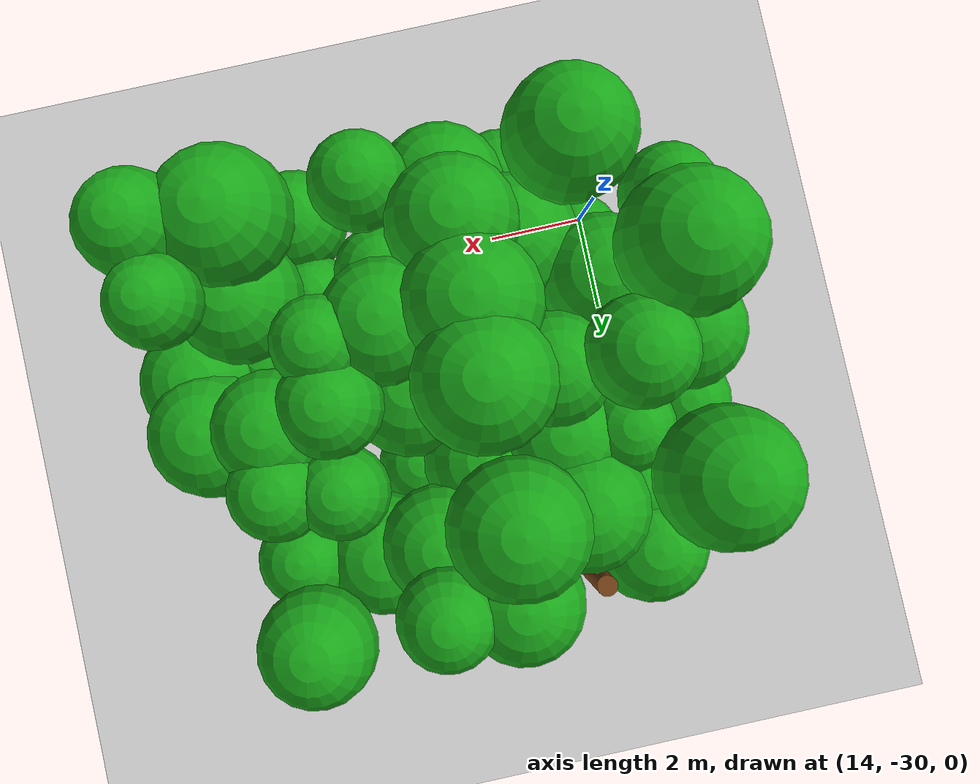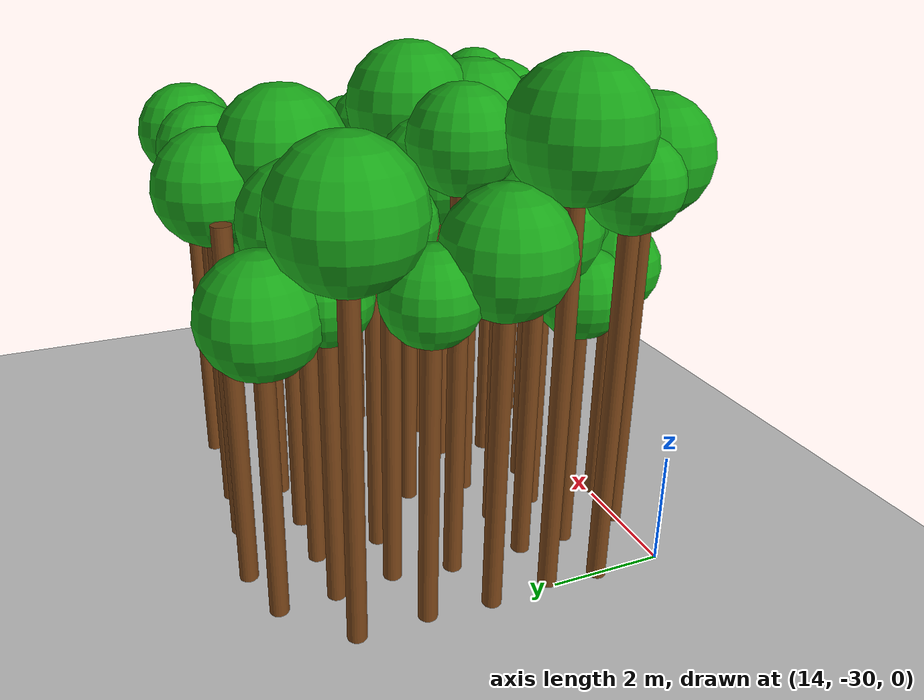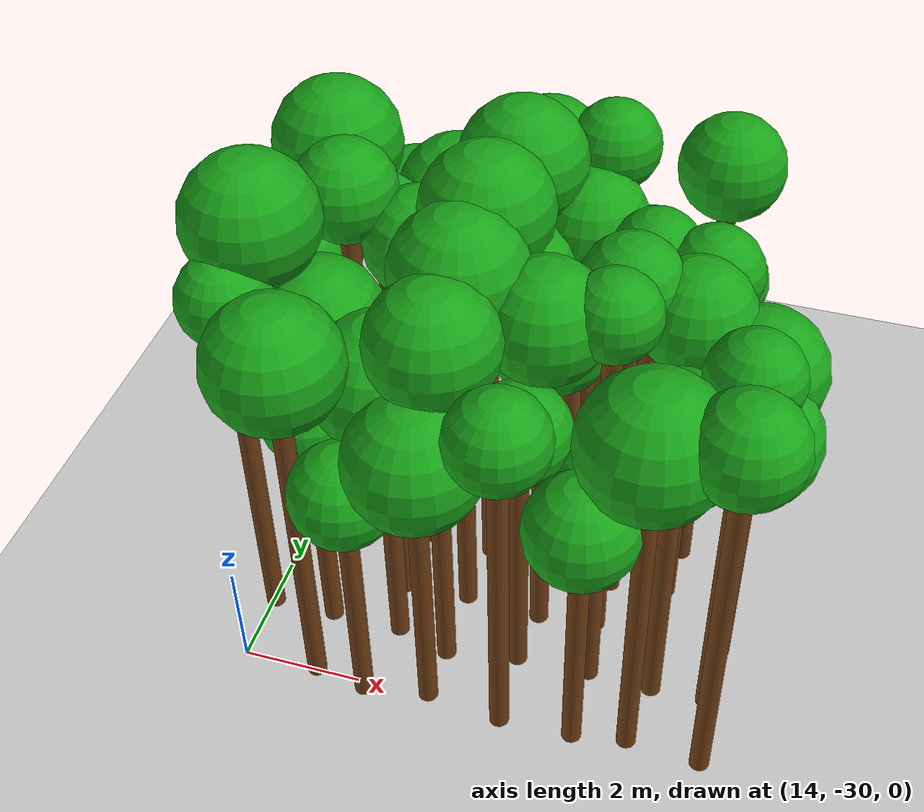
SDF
<sdf version="1.6">
 <world name="forest_world">
  <include><uri>model://sun</uri></include>
  <include><uri>model://ground_plane</uri></include>
  <model name="tree_2178_trunk">
   <static>true</static>
   <pose>14.03 -28.81 3.19 0 0 0</pose>
   <link name="link">
    <collision name="collision">
     <geometry><cylinder><radius>0.16</radius><length>6.37</length></cylinder></geometry>
    </collision>
    <visual name="visual">
     <geometry><cylinder><radius>0.16</radius><length>6.37</length></cylinder></geometry>
     <material><ambient>0.35 0.20 0.05 1</ambient><diffuse>0.45 0.25 0.08 1</diffuse></material>
    </visual>
   </link>
  </model>
  <model name="tree_2178_leaf">
   <static>true</static>
   <pose>14.03 -28.81 6.82 0 0 0</pose>
   <link name="link">
    <collision name="collision"><geometry><sphere><radius>0.74</radius></sphere></geometry></collision>
    <visual name="visual">
     <geometry><sphere><radius>0.74</radius></sphere></geometry>
     <material><ambient>0.05 0.45 0.05 1</ambient><diffuse>0.10 0.65 0.10 1</diffuse></material>
    </visual>
   </link>
  </model>
  <model name="tree_2179_trunk">
   <static>true</static>
   <pose>14.14 -27.92 3.50 0 0 0</pose>
   <link name="link">
    <collision name="collision">
     <geometry><cylinder><radius>0.16</radius><length>7.00</length></cylinder></geometry>
    </collision>
    <visual name="visual">
     <geometry><cylinder><radius>0.16</radius><length>7.00</length></cylinder></geometry>
     <material><ambient>0.35 0.20 0.05 1</ambient><diffuse>0.45 0.25 0.08 1</diffuse></material>
    </visual>
   </link>
  </model>
  <model name="tree_2179_leaf">
   <static>true</static>
   <pose>14.14 -27.92 7.63 0 0 0</pose>
   <link name="link">
    <collision name="collision"><geometry><sphere><radius>1.06</radius></sphere></geometry></collision>
    <visual name="visual">
     <geometry><sphere><radius>1.06</radius></sphere></geometry>
     <material><ambient>0.05 0.45 0.05 1</ambient><diffuse>0.10 0.65 0.10 1</diffuse></material>
    </visual>
   </link>
  </model>
  <model name="tree_2180_trunk">
   <static>true</static>
   <pose>14.05 -26.84 2.72 0 0 0</pose>
   <link name="link">
    <collision name="collision">
     <geometry><cylinder><radius>0.16</radius><length>5.44</length></cylinder></geometry>
    </collision>
    <visual name="visual">
     <geometry><cylinder><radius>0.16</radius><length>5.44</length></cylinder></geometry>
     <material><ambient>0.35 0.20 0.05 1</ambient><diffuse>0.45 0.25 0.08 1</diffuse></material>
    </visual>
   </link>
  </model>
  <model name="tree_2180_leaf">
   <static>true</static>
   <pose>14.05 -26.84 6.03 0 0 0</pose>
   <link name="link">
    <collision name="collision"><geometry><sphere><radius>0.99</radius></sphere></geometry></collision>
    <visual name="visual">
     <geometry><sphere><radius>0.99</radius></sphere></geometry>
     <material><ambient>0.05 0.45 0.05 1</ambient><diffuse>0.10 0.65 0.10 1</diffuse></material>
    </visual>
   </link>
  </model>
  <model name="tree_2181_trunk">
   <static>true</static>
   <pose>14.14 -25.75 2.53 0 0 0</pose>
   <link name="link">
    <collision name="collision">
     <geometry><cylinder><radius>0.16</radius><length>5.06</length></cylinder></geometry>
    </collision>
    <visual name="visual">
     <geometry><cylinder><radius>0.16</radius><length>5.06</length></cylinder></geometry>
     <material><ambient>0.35 0.20 0.05 1</ambient><diffuse>0.45 0.25 0.08 1</diffuse></material>
    </visual>
   </link>
  </model>
  <model name="tree_2181_leaf">
   <static>true</static>
   <pose>14.14 -25.75 5.51 0 0 0</pose>
   <link name="link">
    <collision name="collision"><geometry><sphere><radius>0.75</radius></sphere></geometry></collision>
    <visual name="visual">
     <geometry><sphere><radius>0.75</radius></sphere></geometry>
     <material><ambient>0.05 0.45 0.05 1</ambient><diffuse>0.10 0.65 0.10 1</diffuse></material>
    </visual>
   </link>
  </model>
  <model name="tree_2182_trunk">
   <static>true</static>
   <pose>14.12 -24.56 3.08 0 0 0</pose>
   <link name="link">
    <collision name="collision">
     <geometry><cylinder><radius>0.16</radius><length>6.16</length></cylinder></geometry>
    </collision>
    <visual name="visual">
     <geometry><cylinder><radius>0.16</radius><length>6.16</length></cylinder></geometry>
     <material><ambient>0.35 0.20 0.05 1</ambient><diffuse>0.45 0.25 0.08 1</diffuse></material>
    </visual>
   </link>
  </model>
  <model name="tree_2182_leaf">
   <static>true</static>
   <pose>14.12 -24.56 6.81 0 0 0</pose>
   <link name="link">
    <collision name="collision"><geometry><sphere><radius>1.09</radius></sphere></geometry></collision>
    <visual name="visual">
     <geometry><sphere><radius>1.09</radius></sphere></geometry>
     <material><ambient>0.05 0.45 0.05 1</ambient><diffuse>0.10 0.65 0.10 1</diffuse></material>
    </visual>
   </link>
  </model>
  <model name="tree_2232_trunk">
   <static>true</static>
   <pose>15.26 -29.96 3.13 0 0 0</pose>
   <link name="link">
    <collision name="collision">
     <geometry><cylinder><radius>0.16</radius><length>6.26</length></cylinder></geometry>
    </collision>
    <visual name="visual">
     <geometry><cylinder><radius>0.16</radius><length>6.26</length></cylinder></geometry>
     <material><ambient>0.35 0.20 0.05 1</ambient><diffuse>0.45 0.25 0.08 1</diffuse></material>
    </visual>
   </link>
  </model>
  <model name="tree_2232_leaf">
   <static>true</static>
   <pose>15.26 -29.96 6.88 0 0 0</pose>
   <link name="link">
    <collision name="collision"><geometry><sphere><radius>1.03</radius></sphere></geometry></collision>
    <visual name="visual">
     <geometry><sphere><radius>1.03</radius></sphere></geometry>
     <material><ambient>0.05 0.45 0.05 1</ambient><diffuse>0.10 0.65 0.10 1</diffuse></material>
    </visual>
   </link>
  </model>
  <model name="tree_2233_trunk">
   <static>true</static>
   <pose>15.11 -28.79 2.15 0 0 0</pose>
   <link name="link">
    <collision name="collision">
     <geometry><cylinder><radius>0.16</radius><length>4.30</length></cylinder></geometry>
    </collision>
    <visual name="visual">
     <geometry><cylinder><radius>0.16</radius><length>4.30</length></cylinder></geometry>
     <material><ambient>0.35 0.20 0.05 1</ambient><diffuse>0.45 0.25 0.08 1</diffuse></material>
    </visual>
   </link>
  </model>
  <model name="tree_2233_leaf">
   <static>true</static>
   <pose>15.11 -28.79 4.76 0 0 0</pose>
   <link name="link">
    <collision name="collision"><geometry><sphere><radius>0.77</radius></sphere></geometry></collision>
    <visual name="visual">
     <geometry><sphere><radius>0.77</radius></sphere></geometry>
     <material><ambient>0.05 0.45 0.05 1</ambient><diffuse>0.10 0.65 0.10 1</diffuse></material>
    </visual>
   </link>
  </model>
  <model name="tree_2234_trunk">
   <static>true</static>
   <pose>15.09 -27.92 2.69 0 0 0</pose>
   <link name="link">
    <collision name="collision">
     <geometry><cylinder><radius>0.16</radius><length>5.38</length></cylinder></geometry>
    </collision>
    <visual name="visual">
     <geometry><cylinder><radius>0.16</radius><length>5.38</length></cylinder></geometry>
     <material><ambient>0.35 0.20 0.05 1</ambient><diffuse>0.45 0.25 0.08 1</diffuse></material>
    </visual>
   </link>
  </model>
  <model name="tree_2234_leaf">
   <static>true</static>
   <pose>15.09 -27.92 5.98 0 0 0</pose>
   <link name="link">
    <collision name="collision"><geometry><sphere><radius>1.00</radius></sphere></geometry></collision>
    <visual name="visual">
     <geometry><sphere><radius>1.00</radius></sphere></geometry>
     <material><ambient>0.05 0.45 0.05 1</ambient><diffuse>0.10 0.65 0.10 1</diffuse></material>
    </visual>
   </link>
  </model>
  <model name="tree_2235_trunk">
   <static>true</static>
   <pose>15.08 -26.60 3.46 0 0 0</pose>
   <link name="link">
    <collision name="collision">
     <geometry><cylinder><radius>0.16</radius><length>6.93</length></cylinder></geometry>
    </collision>
    <visual name="visual">
     <geometry><cylinder><radius>0.16</radius><length>6.93</length></cylinder></geometry>
     <material><ambient>0.35 0.20 0.05 1</ambient><diffuse>0.45 0.25 0.08 1</diffuse></material>
    </visual>
   </link>
  </model>
  <model name="tree_2235_leaf">
   <static>true</static>
   <pose>15.08 -26.60 7.42 0 0 0</pose>
   <link name="link">
    <collision name="collision"><geometry><sphere><radius>0.82</radius></sphere></geometry></collision>
    <visual name="visual">
     <geometry><sphere><radius>0.82</radius></sphere></geometry>
     <material><ambient>0.05 0.45 0.05 1</ambient><diffuse>0.10 0.65 0.10 1</diffuse></material>
    </visual>
   </link>
  </model>
  <model name="tree_2236_trunk">
   <static>true</static>
   <pose>15.24 -25.56 2.90 0 0 0</pose>
   <link name="link">
    <collision name="collision">
     <geometry><cylinder><radius>0.16</radius><length>5.80</length></cylinder></geometry>
    </collision>
    <visual name="visual">
     <geometry><cylinder><radius>0.16</radius><length>5.80</length></cylinder></geometry>
     <material><ambient>0.35 0.20 0.05 1</ambient><diffuse>0.45 0.25 0.08 1</diffuse></material>
    </visual>
   </link>
  </model>
  <model name="tree_2236_leaf">
   <static>true</static>
   <pose>15.24 -25.56 6.23 0 0 0</pose>
   <link name="link">
    <collision name="collision"><geometry><sphere><radius>0.72</radius></sphere></geometry></collision>
    <visual name="visual">
     <geometry><sphere><radius>0.72</radius></sphere></geometry>
     <material><ambient>0.05 0.45 0.05 1</ambient><diffuse>0.10 0.65 0.10 1</diffuse></material>
    </visual>
   </link>
  </model>
  <model name="tree_2237_trunk">
   <static>true</static>
   <pose>15.13 -24.54 2.42 0 0 0</pose>
   <link name="link">
    <collision name="collision">
     <geometry><cylinder><radius>0.16</radius><length>4.84</length></cylinder></geometry>
    </collision>
    <visual name="visual">
     <geometry><cylinder><radius>0.16</radius><length>4.84</length></cylinder></geometry>
     <material><ambient>0.35 0.20 0.05 1</ambient><diffuse>0.45 0.25 0.08 1</diffuse></material>
    </visual>
   </link>
  </model>
  <model name="tree_2237_leaf">
   <static>true</static>
   <pose>15.13 -24.54 5.27 0 0 0</pose>
   <link name="link">
    <collision name="collision"><geometry><sphere><radius>0.71</radius></sphere></geometry></collision>
    <visual name="visual">
     <geometry><sphere><radius>0.71</radius></sphere></geometry>
     <material><ambient>0.05 0.45 0.05 1</ambient><diffuse>0.10 0.65 0.10 1</diffuse></material>
    </visual>
   </link>
  </model>
  <model name="tree_2238_trunk">
   <static>true</static>
   <pose>15.11 -23.57 2.30 0 0 0</pose>
   <link name="link">
    <collision name="collision">
     <geometry><cylinder><radius>0.16</radius><length>4.60</length></cylinder></geometry>
    </collision>
    <visual name="visual">
     <geometry><cylinder><radius>0.16</radius><length>4.60</length></cylinder></geometry>
     <material><ambient>0.35 0.20 0.05 1</ambient><diffuse>0.45 0.25 0.08 1</diffuse></material>
    </visual>
   </link>
  </model>
  <model name="tree_2238_leaf">
   <static>true</static>
   <pose>15.11 -23.57 5.17 0 0 0</pose>
   <link name="link">
    <collision name="collision"><geometry><sphere><radius>0.95</radius></sphere></geometry></collision>
    <visual name="visual">
     <geometry><sphere><radius>0.95</radius></sphere></geometry>
     <material><ambient>0.05 0.45 0.05 1</ambient><diffuse>0.10 0.65 0.10 1</diffuse></material>
    </visual>
   </link>
  </model>
  <model name="tree_2287_trunk">
   <static>true</static>
   <pose>16.15 -30.10 2.10 0 0 0</pose>
   <link name="link">
    <collision name="collision">
     <geometry><cylinder><radius>0.16</radius><length>4.20</length></cylinder></geometry>
    </collision>
    <visual name="visual">
     <geometry><cylinder><radius>0.16</radius><length>4.20</length></cylinder></geometry>
     <material><ambient>0.35 0.20 0.05 1</ambient><diffuse>0.45 0.25 0.08 1</diffuse></material>
    </visual>
   </link>
  </model>
  <model name="tree_2287_leaf">
   <static>true</static>
   <pose>16.15 -30.10 4.70 0 0 0</pose>
   <link name="link">
    <collision name="collision"><geometry><sphere><radius>0.83</radius></sphere></geometry></collision>
    <visual name="visual">
     <geometry><sphere><radius>0.83</radius></sphere></geometry>
     <material><ambient>0.05 0.45 0.05 1</ambient><diffuse>0.10 0.65 0.10 1</diffuse></material>
    </visual>
   </link>
  </model>
  <model name="tree_2288_trunk">
   <static>true</static>
   <pose>16.32 -28.79 2.58 0 0 0</pose>
   <link name="link">
    <collision name="collision">
     <geometry><cylinder><radius>0.16</radius><length>5.15</length></cylinder></geometry>
    </collision>
    <visual name="visual">
     <geometry><cylinder><radius>0.16</radius><length>5.15</length></cylinder></geometry>
     <material><ambient>0.35 0.20 0.05 1</ambient><diffuse>0.45 0.25 0.08 1</diffuse></material>
    </visual>
   </link>
  </model>
  <model name="tree_2288_leaf">
   <static>true</static>
   <pose>16.32 -28.79 5.80 0 0 0</pose>
   <link name="link">
    <collision name="collision"><geometry><sphere><radius>1.09</radius></sphere></geometry></collision>
    <visual name="visual">
     <geometry><sphere><radius>1.09</radius></sphere></geometry>
     <material><ambient>0.05 0.45 0.05 1</ambient><diffuse>0.10 0.65 0.10 1</diffuse></material>
    </visual>
   </link>
  </model>
  <model name="tree_2289_trunk">
   <static>true</static>
   <pose>16.12 -27.86 2.31 0 0 0</pose>
   <link name="link">
    <collision name="collision">
     <geometry><cylinder><radius>0.16</radius><length>4.62</length></cylinder></geometry>
    </collision>
    <visual name="visual">
     <geometry><cylinder><radius>0.16</radius><length>4.62</length></cylinder></geometry>
     <material><ambient>0.35 0.20 0.05 1</ambient><diffuse>0.45 0.25 0.08 1</diffuse></material>
    </visual>
   </link>
  </model>
  <model name="tree_2289_leaf">
   <static>true</static>
   <pose>16.12 -27.86 5.16 0 0 0</pose>
   <link name="link">
    <collision name="collision"><geometry><sphere><radius>0.90</radius></sphere></geometry></collision>
    <visual name="visual">
     <geometry><sphere><radius>0.90</radius></sphere></geometry>
     <material><ambient>0.05 0.45 0.05 1</ambient><diffuse>0.10 0.65 0.10 1</diffuse></material>
    </visual>
   </link>
  </model>
  <model name="tree_2290_trunk">
   <static>true</static>
   <pose>16.22 -26.63 3.10 0 0 0</pose>
   <link name="link">
    <collision name="collision">
     <geometry><cylinder><radius>0.16</radius><length>6.20</length></cylinder></geometry>
    </collision>
    <visual name="visual">
     <geometry><cylinder><radius>0.16</radius><length>6.20</length></cylinder></geometry>
     <material><ambient>0.35 0.20 0.05 1</ambient><diffuse>0.45 0.25 0.08 1</diffuse></material>
    </visual>
   </link>
  </model>
  <model name="tree_2290_leaf">
   <static>true</static>
   <pose>16.22 -26.63 6.73 0 0 0</pose>
   <link name="link">
    <collision name="collision"><geometry><sphere><radius>0.88</radius></sphere></geometry></collision>
    <visual name="visual">
     <geometry><sphere><radius>0.88</radius></sphere></geometry>
     <material><ambient>0.05 0.45 0.05 1</ambient><diffuse>0.10 0.65 0.10 1</diffuse></material>
    </visual>
   </link>
  </model>
  <model name="tree_2291_trunk">
   <static>true</static>
   <pose>16.22 -25.64 2.71 0 0 0</pose>
   <link name="link">
    <collision name="collision">
     <geometry><cylinder><radius>0.16</radius><length>5.41</length></cylinder></geometry>
    </collision>
    <visual name="visual">
     <geometry><cylinder><radius>0.16</radius><length>5.41</length></cylinder></geometry>
     <material><ambient>0.35 0.20 0.05 1</ambient><diffuse>0.45 0.25 0.08 1</diffuse></material>
    </visual>
   </link>
  </model>
  <model name="tree_2291_leaf">
   <static>true</static>
   <pose>16.22 -25.64 6.00 0 0 0</pose>
   <link name="link">
    <collision name="collision"><geometry><sphere><radius>0.98</radius></sphere></geometry></collision>
    <visual name="visual">
     <geometry><sphere><radius>0.98</radius></sphere></geometry>
     <material><ambient>0.05 0.45 0.05 1</ambient><diffuse>0.10 0.65 0.10 1</diffuse></material>
    </visual>
   </link>
  </model>
  <model name="tree_2292_trunk">
   <static>true</static>
   <pose>16.16 -24.50 2.76 0 0 0</pose>
   <link name="link">
    <collision name="collision">
     <geometry><cylinder><radius>0.16</radius><length>5.51</length></cylinder></geometry>
    </collision>
    <visual name="visual">
     <geometry><cylinder><radius>0.16</radius><length>5.51</length></cylinder></geometry>
     <material><ambient>0.35 0.20 0.05 1</ambient><diffuse>0.45 0.25 0.08 1</diffuse></material>
    </visual>
   </link>
  </model>
  <model name="tree_2292_leaf">
   <static>true</static>
   <pose>16.16 -24.50 6.13 0 0 0</pose>
   <link name="link">
    <collision name="collision"><geometry><sphere><radius>1.02</radius></sphere></geometry></collision>
    <visual name="visual">
     <geometry><sphere><radius>1.02</radius></sphere></geometry>
     <material><ambient>0.05 0.45 0.05 1</ambient><diffuse>0.10 0.65 0.10 1</diffuse></material>
    </visual>
   </link>
  </model>
  <model name="tree_2293_trunk">
   <static>true</static>
   <pose>16.09 -23.28 3.12 0 0 0</pose>
   <link name="link">
    <collision name="collision">
     <geometry><cylinder><radius>0.16</radius><length>6.24</length></cylinder></geometry>
    </collision>
    <visual name="visual">
     <geometry><cylinder><radius>0.16</radius><length>6.24</length></cylinder></geometry>
     <material><ambient>0.35 0.20 0.05 1</ambient><diffuse>0.45 0.25 0.08 1</diffuse></material>
    </visual>
   </link>
  </model>
  <model name="tree_2342_trunk">
   <static>true</static>
   <pose>17.21 -29.93 2.44 0 0 0</pose>
   <link name="link">
    <collision name="collision">
     <geometry><cylinder><radius>0.16</radius><length>4.87</length></cylinder></geometry>
    </collision>
    <visual name="visual">
     <geometry><cylinder><radius>0.16</radius><length>4.87</length></cylinder></geometry>
     <material><ambient>0.35 0.20 0.05 1</ambient><diffuse>0.45 0.25 0.08 1</diffuse></material>
    </visual>
   </link>
  </model>
  <model name="tree_2342_leaf">
   <static>true</static>
   <pose>17.21 -29.93 5.51 0 0 0</pose>
   <link name="link">
    <collision name="collision"><geometry><sphere><radius>1.06</radius></sphere></geometry></collision>
    <visual name="visual">
     <geometry><sphere><radius>1.06</radius></sphere></geometry>
     <material><ambient>0.05 0.45 0.05 1</ambient><diffuse>0.10 0.65 0.10 1</diffuse></material>
    </visual>
   </link>
  </model>
  <model name="tree_2343_trunk">
   <static>true</static>
   <pose>17.24 -29.04 3.18 0 0 0</pose>
   <link name="link">
    <collision name="collision">
     <geometry><cylinder><radius>0.16</radius><length>6.35</length></cylinder></geometry>
    </collision>
    <visual name="visual">
     <geometry><cylinder><radius>0.16</radius><length>6.35</length></cylinder></geometry>
     <material><ambient>0.35 0.20 0.05 1</ambient><diffuse>0.45 0.25 0.08 1</diffuse></material>
    </visual>
   </link>
  </model>
  <model name="tree_2343_leaf">
   <static>true</static>
   <pose>17.24 -29.04 6.95 0 0 0</pose>
   <link name="link">
    <collision name="collision"><geometry><sphere><radius>1.00</radius></sphere></geometry></collision>
    <visual name="visual">
     <geometry><sphere><radius>1.00</radius></sphere></geometry>
     <material><ambient>0.05 0.45 0.05 1</ambient><diffuse>0.10 0.65 0.10 1</diffuse></material>
    </visual>
   </link>
  </model>
  <model name="tree_2344_trunk">
   <static>true</static>
   <pose>17.23 -27.79 3.29 0 0 0</pose>
   <link name="link">
    <collision name="collision">
     <geometry><cylinder><radius>0.16</radius><length>6.59</length></cylinder></geometry>
    </collision>
    <visual name="visual">
     <geometry><cylinder><radius>0.16</radius><length>6.59</length></cylinder></geometry>
     <material><ambient>0.35 0.20 0.05 1</ambient><diffuse>0.45 0.25 0.08 1</diffuse></material>
    </visual>
   </link>
  </model>
  <model name="tree_2344_leaf">
   <static>true</static>
   <pose>17.23 -27.79 7.23 0 0 0</pose>
   <link name="link">
    <collision name="collision"><geometry><sphere><radius>1.06</radius></sphere></geometry></collision>
    <visual name="visual">
     <geometry><sphere><radius>1.06</radius></sphere></geometry>
     <material><ambient>0.05 0.45 0.05 1</ambient><diffuse>0.10 0.65 0.10 1</diffuse></material>
    </visual>
   </link>
  </model>
  <model name="tree_2345_trunk">
   <static>true</static>
   <pose>17.31 -26.66 3.47 0 0 0</pose>
   <link name="link">
    <collision name="collision">
     <geometry><cylinder><radius>0.16</radius><length>6.94</length></cylinder></geometry>
    </collision>
    <visual name="visual">
     <geometry><cylinder><radius>0.16</radius><length>6.94</length></cylinder></geometry>
     <material><ambient>0.35 0.20 0.05 1</ambient><diffuse>0.45 0.25 0.08 1</diffuse></material>
    </visual>
   </link>
  </model>
  <model name="tree_2345_leaf">
   <static>true</static>
   <pose>17.31 -26.66 7.57 0 0 0</pose>
   <link name="link">
    <collision name="collision"><geometry><sphere><radius>1.04</radius></sphere></geometry></collision>
    <visual name="visual">
     <geometry><sphere><radius>1.04</radius></sphere></geometry>
     <material><ambient>0.05 0.45 0.05 1</ambient><diffuse>0.10 0.65 0.10 1</diffuse></material>
    </visual>
   </link>
  </model>
  <model name="tree_2346_trunk">
   <static>true</static>
   <pose>17.46 -25.51 2.47 0 0 0</pose>
   <link name="link">
    <collision name="collision">
     <geometry><cylinder><radius>0.16</radius><length>4.95</length></cylinder></geometry>
    </collision>
    <visual name="visual">
     <geometry><cylinder><radius>0.16</radius><length>4.95</length></cylinder></geometry>
     <material><ambient>0.35 0.20 0.05 1</ambient><diffuse>0.45 0.25 0.08 1</diffuse></material>
    </visual>
   </link>
  </model>
  <model name="tree_2346_leaf">
   <static>true</static>
   <pose>17.46 -25.51 5.53 0 0 0</pose>
   <link name="link">
    <collision name="collision"><geometry><sphere><radius>0.98</radius></sphere></geometry></collision>
    <visual name="visual">
     <geometry><sphere><radius>0.98</radius></sphere></geometry>
     <material><ambient>0.05 0.45 0.05 1</ambient><diffuse>0.10 0.65 0.10 1</diffuse></material>
    </visual>
   </link>
  </model>
  <model name="tree_2347_trunk">
   <static>true</static>
   <pose>17.25 -24.50 3.17 0 0 0</pose>
   <link name="link">
    <collision name="collision">
     <geometry><cylinder><radius>0.16</radius><length>6.34</length></cylinder></geometry>
    </collision>
    <visual name="visual">
     <geometry><cylinder><radius>0.16</radius><length>6.34</length></cylinder></geometry>
     <material><ambient>0.35 0.20 0.05 1</ambient><diffuse>0.45 0.25 0.08 1</diffuse></material>
    </visual>
   </link>
  </model>
  <model name="tree_2347_leaf">
   <static>true</static>
   <pose>17.25 -24.50 6.98 0 0 0</pose>
   <link name="link">
    <collision name="collision"><geometry><sphere><radius>1.07</radius></sphere></geometry></collision>
    <visual name="visual">
     <geometry><sphere><radius>1.07</radius></sphere></geometry>
     <material><ambient>0.05 0.45 0.05 1</ambient><diffuse>0.10 0.65 0.10 1</diffuse></material>
    </visual>
   </link>
  </model>
  <model name="tree_2348_trunk">
   <static>true</static>
   <pose>17.40 -23.39 2.94 0 0 0</pose>
   <link name="link">
    <collision name="collision">
     <geometry><cylinder><radius>0.16</radius><length>5.89</length></cylinder></geometry>
    </collision>
    <visual name="visual">
     <geometry><cylinder><radius>0.16</radius><length>5.89</length></cylinder></geometry>
     <material><ambient>0.35 0.20 0.05 1</ambient><diffuse>0.45 0.25 0.08 1</diffuse></material>
    </visual>
   </link>
  </model>
  <model name="tree_2348_leaf">
   <static>true</static>
   <pose>17.40 -23.39 6.46 0 0 0</pose>
   <link name="link">
    <collision name="collision"><geometry><sphere><radius>0.95</radius></sphere></geometry></collision>
    <visual name="visual">
     <geometry><sphere><radius>0.95</radius></sphere></geometry>
     <material><ambient>0.05 0.45 0.05 1</ambient><diffuse>0.10 0.65 0.10 1</diffuse></material>
    </visual>
   </link>
  </model>
  <model name="tree_2397_trunk">
   <static>true</static>
   <pose>18.47 -30.07 2.97 0 0 0</pose>
   <link name="link">
    <collision name="collision">
     <geometry><cylinder><radius>0.16</radius><length>5.94</length></cylinder></geometry>
    </collision>
    <visual name="visual">
     <geometry><cylinder><radius>0.16</radius><length>5.94</length></cylinder></geometry>
     <material><ambient>0.35 0.20 0.05 1</ambient><diffuse>0.45 0.25 0.08 1</diffuse></material>
    </visual>
   </link>
  </model>
  <model name="tree_2397_leaf">
   <static>true</static>
   <pose>18.47 -30.07 6.41 0 0 0</pose>
   <link name="link">
    <collision name="collision"><geometry><sphere><radius>0.78</radius></sphere></geometry></collision>
    <visual name="visual">
     <geometry><sphere><radius>0.78</radius></sphere></geometry>
     <material><ambient>0.05 0.45 0.05 1</ambient><diffuse>0.10 0.65 0.10 1</diffuse></material>
    </visual>
   </link>
  </model>
  <model name="tree_2398_trunk">
   <static>true</static>
   <pose>18.42 -28.81 2.43 0 0 0</pose>
   <link name="link">
    <collision name="collision">
     <geometry><cylinder><radius>0.16</radius><length>4.87</length></cylinder></geometry>
    </collision>
    <visual name="visual">
     <geometry><cylinder><radius>0.16</radius><length>4.87</length></cylinder></geometry>
     <material><ambient>0.35 0.20 0.05 1</ambient><diffuse>0.45 0.25 0.08 1</diffuse></material>
    </visual>
   </link>
  </model>
  <model name="tree_2398_leaf">
   <static>true</static>
   <pose>18.42 -28.81 5.35 0 0 0</pose>
   <link name="link">
    <collision name="collision"><geometry><sphere><radius>0.81</radius></sphere></geometry></collision>
    <visual name="visual">
     <geometry><sphere><radius>0.81</radius></sphere></geometry>
     <material><ambient>0.05 0.45 0.05 1</ambient><diffuse>0.10 0.65 0.10 1</diffuse></material>
    </visual>
   </link>
  </model>
  <model name="tree_2399_trunk">
   <static>true</static>
   <pose>18.53 -27.86 3.07 0 0 0</pose>
   <link name="link">
    <collision name="collision">
     <geometry><cylinder><radius>0.16</radius><length>6.14</length></cylinder></geometry>
    </collision>
    <visual name="visual">
     <geometry><cylinder><radius>0.16</radius><length>6.14</length></cylinder></geometry>
     <material><ambient>0.35 0.20 0.05 1</ambient><diffuse>0.45 0.25 0.08 1</diffuse></material>
    </visual>
   </link>
  </model>
  <model name="tree_2399_leaf">
   <static>true</static>
   <pose>18.53 -27.86 6.72 0 0 0</pose>
   <link name="link">
    <collision name="collision"><geometry><sphere><radius>0.97</radius></sphere></geometry></collision>
    <visual name="visual">
     <geometry><sphere><radius>0.97</radius></sphere></geometry>
     <material><ambient>0.05 0.45 0.05 1</ambient><diffuse>0.10 0.65 0.10 1</diffuse></material>
    </visual>
   </link>
  </model>
  <model name="tree_2400_trunk">
   <static>true</static>
   <pose>18.34 -26.85 2.54 0 0 0</pose>
   <link name="link">
    <collision name="collision">
     <geometry><cylinder><radius>0.16</radius><length>5.08</length></cylinder></geometry>
    </collision>
    <visual name="visual">
     <geometry><cylinder><radius>0.16</radius><length>5.08</length></cylinder></geometry>
     <material><ambient>0.35 0.20 0.05 1</ambient><diffuse>0.45 0.25 0.08 1</diffuse></material>
    </visual>
   </link>
  </model>
  <model name="tree_2400_leaf">
   <static>true</static>
   <pose>18.34 -26.85 5.73 0 0 0</pose>
   <link name="link">
    <collision name="collision"><geometry><sphere><radius>1.09</radius></sphere></geometry></collision>
    <visual name="visual">
     <geometry><sphere><radius>1.09</radius></sphere></geometry>
     <material><ambient>0.05 0.45 0.05 1</ambient><diffuse>0.10 0.65 0.10 1</diffuse></material>
    </visual>
   </link>
  </model>
  <model name="tree_2401_trunk">
   <static>true</static>
   <pose>18.44 -25.65 2.20 0 0 0</pose>
   <link name="link">
    <collision name="collision">
     <geometry><cylinder><radius>0.16</radius><length>4.39</length></cylinder></geometry>
    </collision>
    <visual name="visual">
     <geometry><cylinder><radius>0.16</radius><length>4.39</length></cylinder></geometry>
     <material><ambient>0.35 0.20 0.05 1</ambient><diffuse>0.45 0.25 0.08 1</diffuse></material>
    </visual>
   </link>
  </model>
  <model name="tree_2401_leaf">
   <static>true</static>
   <pose>18.44 -25.65 4.83 0 0 0</pose>
   <link name="link">
    <collision name="collision"><geometry><sphere><radius>0.74</radius></sphere></geometry></collision>
    <visual name="visual">
     <geometry><sphere><radius>0.74</radius></sphere></geometry>
     <material><ambient>0.05 0.45 0.05 1</ambient><diffuse>0.10 0.65 0.10 1</diffuse></material>
    </visual>
   </link>
  </model>
  <model name="tree_2402_trunk">
   <static>true</static>
   <pose>18.40 -24.39 2.69 0 0 0</pose>
   <link name="link">
    <collision name="collision">
     <geometry><cylinder><radius>0.16</radius><length>5.39</length></cylinder></geometry>
    </collision>
    <visual name="visual">
     <geometry><cylinder><radius>0.16</radius><length>5.39</length></cylinder></geometry>
     <material><ambient>0.35 0.20 0.05 1</ambient><diffuse>0.45 0.25 0.08 1</diffuse></material>
    </visual>
   </link>
  </model>
  <model name="tree_2402_leaf">
   <static>true</static>
   <pose>18.40 -24.39 5.95 0 0 0</pose>
   <link name="link">
    <collision name="collision"><geometry><sphere><radius>0.94</radius></sphere></geometry></collision>
    <visual name="visual">
     <geometry><sphere><radius>0.94</radius></sphere></geometry>
     <material><ambient>0.05 0.45 0.05 1</ambient><diffuse>0.10 0.65 0.10 1</diffuse></material>
    </visual>
   </link>
  </model>
  <model name="tree_2403_trunk">
   <static>true</static>
   <pose>18.52 -23.45 3.20 0 0 0</pose>
   <link name="link">
    <collision name="collision">
     <geometry><cylinder><radius>0.16</radius><length>6.40</length></cylinder></geometry>
    </collision>
    <visual name="visual">
     <geometry><cylinder><radius>0.16</radius><length>6.40</length></cylinder></geometry>
     <material><ambient>0.35 0.20 0.05 1</ambient><diffuse>0.45 0.25 0.08 1</diffuse></material>
    </visual>
   </link>
  </model>
  <model name="tree_2403_leaf">
   <static>true</static>
   <pose>18.52 -23.45 6.85 0 0 0</pose>
   <link name="link">
    <collision name="collision"><geometry><sphere><radius>0.76</radius></sphere></geometry></collision>
    <visual name="visual">
     <geometry><sphere><radius>0.76</radius></sphere></geometry>
     <material><ambient>0.05 0.45 0.05 1</ambient><diffuse>0.10 0.65 0.10 1</diffuse></material>
    </visual>
   </link>
  </model>
  <model name="tree_2452_trunk">
   <static>true</static>
   <pose>19.67 -30.03 2.22 0 0 0</pose>
   <link name="link">
    <collision name="collision">
     <geometry><cylinder><radius>0.16</radius><length>4.44</length></cylinder></geometry>
    </collision>
    <visual name="visual">
     <geometry><cylinder><radius>0.16</radius><length>4.44</length></cylinder></geometry>
     <material><ambient>0.35 0.20 0.05 1</ambient><diffuse>0.45 0.25 0.08 1</diffuse></material>
    </visual>
   </link>
  </model>
  <model name="tree_2452_leaf">
   <static>true</static>
   <pose>19.67 -30.03 4.96 0 0 0</pose>
   <link name="link">
    <collision name="collision"><geometry><sphere><radius>0.87</radius></sphere></geometry></collision>
    <visual name="visual">
     <geometry><sphere><radius>0.87</radius></sphere></geometry>
     <material><ambient>0.05 0.45 0.05 1</ambient><diffuse>0.10 0.65 0.10 1</diffuse></material>
    </visual>
   </link>
  </model>
  <model name="tree_2453_trunk">
   <static>true</static>
   <pose>19.64 -28.77 2.21 0 0 0</pose>
   <link name="link">
    <collision name="collision">
     <geometry><cylinder><radius>0.16</radius><length>4.42</length></cylinder></geometry>
    </collision>
    <visual name="visual">
     <geometry><cylinder><radius>0.16</radius><length>4.42</length></cylinder></geometry>
     <material><ambient>0.35 0.20 0.05 1</ambient><diffuse>0.45 0.25 0.08 1</diffuse></material>
    </visual>
   </link>
  </model>
  <model name="tree_2453_leaf">
   <static>true</static>
   <pose>19.64 -28.77 4.84 0 0 0</pose>
   <link name="link">
    <collision name="collision"><geometry><sphere><radius>0.70</radius></sphere></geometry></collision>
    <visual name="visual">
     <geometry><sphere><radius>0.70</radius></sphere></geometry>
     <material><ambient>0.05 0.45 0.05 1</ambient><diffuse>0.10 0.65 0.10 1</diffuse></material>
    </visual>
   </link>
  </model>
  <model name="tree_2454_trunk">
   <static>true</static>
   <pose>19.51 -27.74 3.26 0 0 0</pose>
   <link name="link">
    <collision name="collision">
     <geometry><cylinder><radius>0.16</radius><length>6.52</length></cylinder></geometry>
    </collision>
    <visual name="visual">
     <geometry><cylinder><radius>0.16</radius><length>6.52</length></cylinder></geometry>
     <material><ambient>0.35 0.20 0.05 1</ambient><diffuse>0.45 0.25 0.08 1</diffuse></material>
    </visual>
   </link>
  </model>
  <model name="tree_2454_leaf">
   <static>true</static>
   <pose>19.51 -27.74 6.95 0 0 0</pose>
   <link name="link">
    <collision name="collision"><geometry><sphere><radius>0.71</radius></sphere></geometry></collision>
    <visual name="visual">
     <geometry><sphere><radius>0.71</radius></sphere></geometry>
     <material><ambient>0.05 0.45 0.05 1</ambient><diffuse>0.10 0.65 0.10 1</diffuse></material>
    </visual>
   </link>
  </model>
  <model name="tree_2455_trunk">
   <static>true</static>
   <pose>19.55 -26.82 3.15 0 0 0</pose>
   <link name="link">
    <collision name="collision">
     <geometry><cylinder><radius>0.16</radius><length>6.30</length></cylinder></geometry>
    </collision>
    <visual name="visual">
     <geometry><cylinder><radius>0.16</radius><length>6.30</length></cylinder></geometry>
     <material><ambient>0.35 0.20 0.05 1</ambient><diffuse>0.45 0.25 0.08 1</diffuse></material>
    </visual>
   </link>
  </model>
  <model name="tree_2455_leaf">
   <static>true</static>
   <pose>19.55 -26.82 6.79 0 0 0</pose>
   <link name="link">
    <collision name="collision"><geometry><sphere><radius>0.81</radius></sphere></geometry></collision>
    <visual name="visual">
     <geometry><sphere><radius>0.81</radius></sphere></geometry>
     <material><ambient>0.05 0.45 0.05 1</ambient><diffuse>0.10 0.65 0.10 1</diffuse></material>
    </visual>
   </link>
  </model>
  <model name="tree_2456_trunk">
   <static>true</static>
   <pose>19.67 -25.53 2.99 0 0 0</pose>
   <link name="link">
    <collision name="collision">
     <geometry><cylinder><radius>0.16</radius><length>5.99</length></cylinder></geometry>
    </collision>
    <visual name="visual">
     <geometry><cylinder><radius>0.16</radius><length>5.99</length></cylinder></geometry>
     <material><ambient>0.35 0.20 0.05 1</ambient><diffuse>0.45 0.25 0.08 1</diffuse></material>
    </visual>
   </link>
  </model>
  <model name="tree_2456_leaf">
   <static>true</static>
   <pose>19.67 -25.53 6.43 0 0 0</pose>
   <link name="link">
    <collision name="collision"><geometry><sphere><radius>0.73</radius></sphere></geometry></collision>
    <visual name="visual">
     <geometry><sphere><radius>0.73</radius></sphere></geometry>
     <material><ambient>0.05 0.45 0.05 1</ambient><diffuse>0.10 0.65 0.10 1</diffuse></material>
    </visual>
   </link>
  </model>
  <model name="tree_2457_trunk">
   <static>true</static>
   <pose>19.33 -24.35 2.32 0 0 0</pose>
   <link name="link">
    <collision name="collision">
     <geometry><cylinder><radius>0.16</radius><length>4.63</length></cylinder></geometry>
    </collision>
    <visual name="visual">
     <geometry><cylinder><radius>0.16</radius><length>4.63</length></cylinder></geometry>
     <material><ambient>0.35 0.20 0.05 1</ambient><diffuse>0.45 0.25 0.08 1</diffuse></material>
    </visual>
   </link>
  </model>
  <model name="tree_2457_leaf">
   <static>true</static>
   <pose>19.33 -24.35 5.23 0 0 0</pose>
   <link name="link">
    <collision name="collision"><geometry><sphere><radius>0.99</radius></sphere></geometry></collision>
    <visual name="visual">
     <geometry><sphere><radius>0.99</radius></sphere></geometry>
     <material><ambient>0.05 0.45 0.05 1</ambient><diffuse>0.10 0.65 0.10 1</diffuse></material>
    </visual>
   </link>
  </model>
  <model name="tree_2507_trunk">
   <static>true</static>
   <pose>20.54 -29.89 3.04 0 0 0</pose>
   <link name="link">
    <collision name="collision">
     <geometry><cylinder><radius>0.16</radius><length>6.07</length></cylinder></geometry>
    </collision>
    <visual name="visual">
     <geometry><cylinder><radius>0.16</radius><length>6.07</length></cylinder></geometry>
     <material><ambient>0.35 0.20 0.05 1</ambient><diffuse>0.45 0.25 0.08 1</diffuse></material>
    </visual>
   </link>
  </model>
  <model name="tree_2507_leaf">
   <static>true</static>
   <pose>20.54 -29.89 6.73 0 0 0</pose>
   <link name="link">
    <collision name="collision"><geometry><sphere><radius>1.09</radius></sphere></geometry></collision>
    <visual name="visual">
     <geometry><sphere><radius>1.09</radius></sphere></geometry>
     <material><ambient>0.05 0.45 0.05 1</ambient><diffuse>0.10 0.65 0.10 1</diffuse></material>
    </visual>
   </link>
  </model>
  <model name="tree_2508_trunk">
   <static>true</static>
   <pose>20.71 -28.80 2.61 0 0 0</pose>
   <link name="link">
    <collision name="collision">
     <geometry><cylinder><radius>0.16</radius><length>5.21</length></cylinder></geometry>
    </collision>
    <visual name="visual">
     <geometry><cylinder><radius>0.16</radius><length>5.21</length></cylinder></geometry>
     <material><ambient>0.35 0.20 0.05 1</ambient><diffuse>0.45 0.25 0.08 1</diffuse></material>
    </visual>
   </link>
  </model>
  <model name="tree_2508_leaf">
   <static>true</static>
   <pose>20.71 -28.80 5.84 0 0 0</pose>
   <link name="link">
    <collision name="collision"><geometry><sphere><radius>1.04</radius></sphere></geometry></collision>
    <visual name="visual">
     <geometry><sphere><radius>1.04</radius></sphere></geometry>
     <material><ambient>0.05 0.45 0.05 1</ambient><diffuse>0.10 0.65 0.10 1</diffuse></material>
    </visual>
   </link>
  </model>
  <model name="tree_2509_trunk">
   <static>true</static>
   <pose>20.57 -27.92 2.13 0 0 0</pose>
   <link name="link">
    <collision name="collision">
     <geometry><cylinder><radius>0.16</radius><length>4.26</length></cylinder></geometry>
    </collision>
    <visual name="visual">
     <geometry><cylinder><radius>0.16</radius><length>4.26</length></cylinder></geometry>
     <material><ambient>0.35 0.20 0.05 1</ambient><diffuse>0.45 0.25 0.08 1</diffuse></material>
    </visual>
   </link>
  </model>
  <model name="tree_2509_leaf">
   <static>true</static>
   <pose>20.57 -27.92 4.81 0 0 0</pose>
   <link name="link">
    <collision name="collision"><geometry><sphere><radius>0.92</radius></sphere></geometry></collision>
    <visual name="visual">
     <geometry><sphere><radius>0.92</radius></sphere></geometry>
     <material><ambient>0.05 0.45 0.05 1</ambient><diffuse>0.10 0.65 0.10 1</diffuse></material>
    </visual>
   </link>
  </model>
  <model name="tree_2510_trunk">
   <static>true</static>
   <pose>20.52 -26.68 2.88 0 0 0</pose>
   <link name="link">
    <collision name="collision">
     <geometry><cylinder><radius>0.16</radius><length>5.77</length></cylinder></geometry>
    </collision>
    <visual name="visual">
     <geometry><cylinder><radius>0.16</radius><length>5.77</length></cylinder></geometry>
     <material><ambient>0.35 0.20 0.05 1</ambient><diffuse>0.45 0.25 0.08 1</diffuse></material>
    </visual>
   </link>
  </model>
  <model name="tree_2510_leaf">
   <static>true</static>
   <pose>20.52 -26.68 6.32 0 0 0</pose>
   <link name="link">
    <collision name="collision"><geometry><sphere><radius>0.92</radius></sphere></geometry></collision>
    <visual name="visual">
     <geometry><sphere><radius>0.92</radius></sphere></geometry>
     <material><ambient>0.05 0.45 0.05 1</ambient><diffuse>0.10 0.65 0.10 1</diffuse></material>
    </visual>
   </link>
  </model>
  <model name="tree_2511_trunk">
   <static>true</static>
   <pose>20.61 -25.75 2.98 0 0 0</pose>
   <link name="link">
    <collision name="collision">
     <geometry><cylinder><radius>0.16</radius><length>5.96</length></cylinder></geometry>
    </collision>
    <visual name="visual">
     <geometry><cylinder><radius>0.16</radius><length>5.96</length></cylinder></geometry>
     <material><ambient>0.35 0.20 0.05 1</ambient><diffuse>0.45 0.25 0.08 1</diffuse></material>
    </visual>
   </link>
  </model>
  <model name="tree_2511_leaf">
   <static>true</static>
   <pose>20.61 -25.75 6.42 0 0 0</pose>
   <link name="link">
    <collision name="collision"><geometry><sphere><radius>0.77</radius></sphere></geometry></collision>
    <visual name="visual">
     <geometry><sphere><radius>0.77</radius></sphere></geometry>
     <material><ambient>0.05 0.45 0.05 1</ambient><diffuse>0.10 0.65 0.10 1</diffuse></material>
    </visual>
   </link>
  </model>
  <model name="tree_2512_trunk">
   <static>true</static>
   <pose>20.57 -24.57 2.44 0 0 0</pose>
   <link name="link">
    <collision name="collision">
     <geometry><cylinder><radius>0.16</radius><length>4.87</length></cylinder></geometry>
    </collision>
    <visual name="visual">
     <geometry><cylinder><radius>0.16</radius><length>4.87</length></cylinder></geometry>
     <material><ambient>0.35 0.20 0.05 1</ambient><diffuse>0.45 0.25 0.08 1</diffuse></material>
    </visual>
   </link>
  </model>
  <model name="tree_2512_leaf">
   <static>true</static>
   <pose>20.57 -24.57 5.35 0 0 0</pose>
   <link name="link">
    <collision name="collision"><geometry><sphere><radius>0.79</radius></sphere></geometry></collision>
    <visual name="visual">
     <geometry><sphere><radius>0.79</radius></sphere></geometry>
     <material><ambient>0.05 0.45 0.05 1</ambient><diffuse>0.10 0.65 0.10 1</diffuse></material>
    </visual>
   </link>
  </model>
  <model name="tree_2513_trunk">
   <static>true</static>
   <pose>20.43 -23.46 3.13 0 0 0</pose>
   <link name="link">
    <collision name="collision">
     <geometry><cylinder><radius>0.16</radius><length>6.25</length></cylinder></geometry>
    </collision>
    <visual name="visual">
     <geometry><cylinder><radius>0.16</radius><length>6.25</length></cylinder></geometry>
     <material><ambient>0.35 0.20 0.05 1</ambient><diffuse>0.45 0.25 0.08 1</diffuse></material>
    </visual>
   </link>
  </model>
  <model name="tree_2513_leaf">
   <static>true</static>
   <pose>20.43 -23.46 6.78 0 0 0</pose>
   <link name="link">
    <collision name="collision"><geometry><sphere><radius>0.88</radius></sphere></geometry></collision>
    <visual name="visual">
     <geometry><sphere><radius>0.88</radius></sphere></geometry>
     <material><ambient>0.05 0.45 0.05 1</ambient><diffuse>0.10 0.65 0.10 1</diffuse></material>
    </visual>
   </link>
  </model>
  <model name="tree_2562_trunk">
   <static>true</static>
   <pose>21.75 -29.97 3.31 0 0 0</pose>
   <link name="link">
    <collision name="collision">
     <geometry><cylinder><radius>0.16</radius><length>6.61</length></cylinder></geometry>
    </collision>
    <visual name="visual">
     <geometry><cylinder><radius>0.16</radius><length>6.61</length></cylinder></geometry>
     <material><ambient>0.35 0.20 0.05 1</ambient><diffuse>0.45 0.25 0.08 1</diffuse></material>
    </visual>
   </link>
  </model>
  <model name="tree_2562_leaf">
   <static>true</static>
   <pose>21.75 -29.97 7.10 0 0 0</pose>
   <link name="link">
    <collision name="collision"><geometry><sphere><radius>0.82</radius></sphere></geometry></collision>
    <visual name="visual">
     <geometry><sphere><radius>0.82</radius></sphere></geometry>
     <material><ambient>0.05 0.45 0.05 1</ambient><diffuse>0.10 0.65 0.10 1</diffuse></material>
    </visual>
   </link>
  </model>
  <model name="tree_2563_trunk">
   <static>true</static>
   <pose>21.62 -28.78 3.39 0 0 0</pose>
   <link name="link">
    <collision name="collision">
     <geometry><cylinder><radius>0.16</radius><length>6.78</length></cylinder></geometry>
    </collision>
    <visual name="visual">
     <geometry><cylinder><radius>0.16</radius><length>6.78</length></cylinder></geometry>
     <material><ambient>0.35 0.20 0.05 1</ambient><diffuse>0.45 0.25 0.08 1</diffuse></material>
    </visual>
   </link>
  </model>
  <model name="tree_2563_leaf">
   <static>true</static>
   <pose>21.62 -28.78 7.21 0 0 0</pose>
   <link name="link">
    <collision name="collision"><geometry><sphere><radius>0.71</radius></sphere></geometry></collision>
    <visual name="visual">
     <geometry><sphere><radius>0.71</radius></sphere></geometry>
     <material><ambient>0.05 0.45 0.05 1</ambient><diffuse>0.10 0.65 0.10 1</diffuse></material>
    </visual>
   </link>
  </model>
  <model name="tree_2564_trunk">
   <static>true</static>
   <pose>21.67 -27.72 2.23 0 0 0</pose>
   <link name="link">
    <collision name="collision">
     <geometry><cylinder><radius>0.16</radius><length>4.46</length></cylinder></geometry>
    </collision>
    <visual name="visual">
     <geometry><cylinder><radius>0.16</radius><length>4.46</length></cylinder></geometry>
     <material><ambient>0.35 0.20 0.05 1</ambient><diffuse>0.45 0.25 0.08 1</diffuse></material>
    </visual>
   </link>
  </model>
  <model name="tree_2564_leaf">
   <static>true</static>
   <pose>21.67 -27.72 5.09 0 0 0</pose>
   <link name="link">
    <collision name="collision"><geometry><sphere><radius>1.05</radius></sphere></geometry></collision>
    <visual name="visual">
     <geometry><sphere><radius>1.05</radius></sphere></geometry>
     <material><ambient>0.05 0.45 0.05 1</ambient><diffuse>0.10 0.65 0.10 1</diffuse></material>
    </visual>
   </link>
  </model>
  <model name="tree_2565_trunk">
   <static>true</static>
   <pose>21.58 -26.82 2.50 0 0 0</pose>
   <link name="link">
    <collision name="collision">
     <geometry><cylinder><radius>0.16</radius><length>5.00</length></cylinder></geometry>
    </collision>
    <visual name="visual">
     <geometry><cylinder><radius>0.16</radius><length>5.00</length></cylinder></geometry>
     <material><ambient>0.35 0.20 0.05 1</ambient><diffuse>0.45 0.25 0.08 1</diffuse></material>
    </visual>
   </link>
  </model>
  <model name="tree_2565_leaf">
   <static>true</static>
   <pose>21.58 -26.82 5.62 0 0 0</pose>
   <link name="link">
    <collision name="collision"><geometry><sphere><radius>1.02</radius></sphere></geometry></collision>
    <visual name="visual">
     <geometry><sphere><radius>1.02</radius></sphere></geometry>
     <material><ambient>0.05 0.45 0.05 1</ambient><diffuse>0.10 0.65 0.10 1</diffuse></material>
    </visual>
   </link>
  </model>
 </world>
</sdf>
